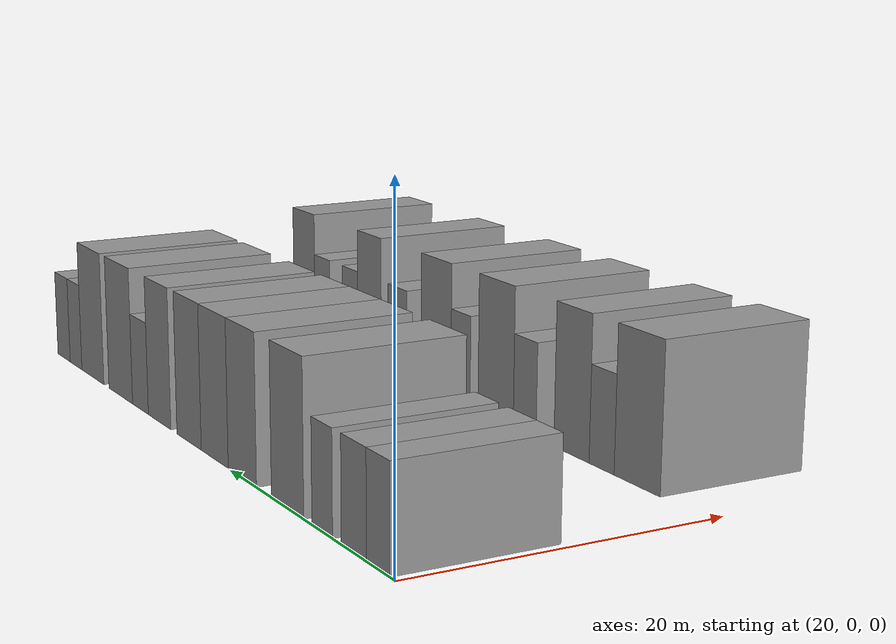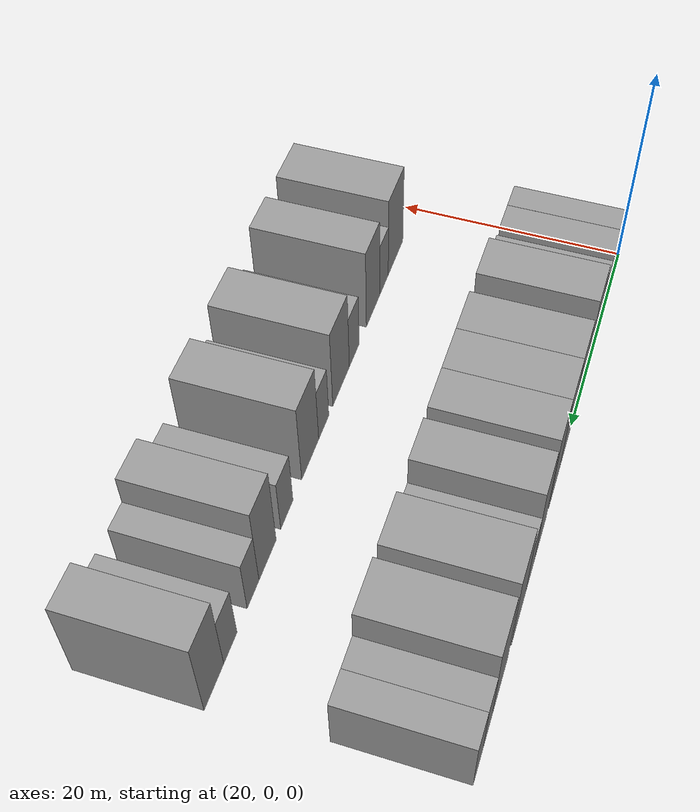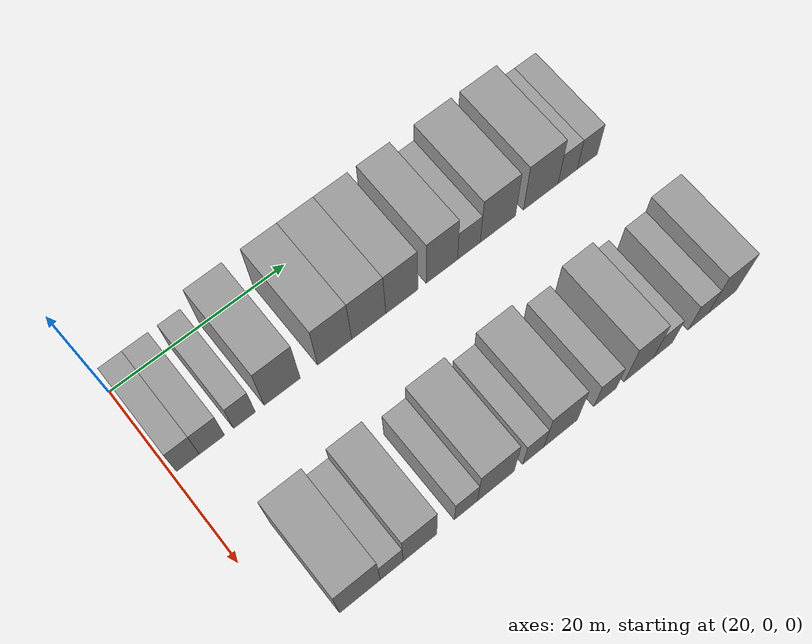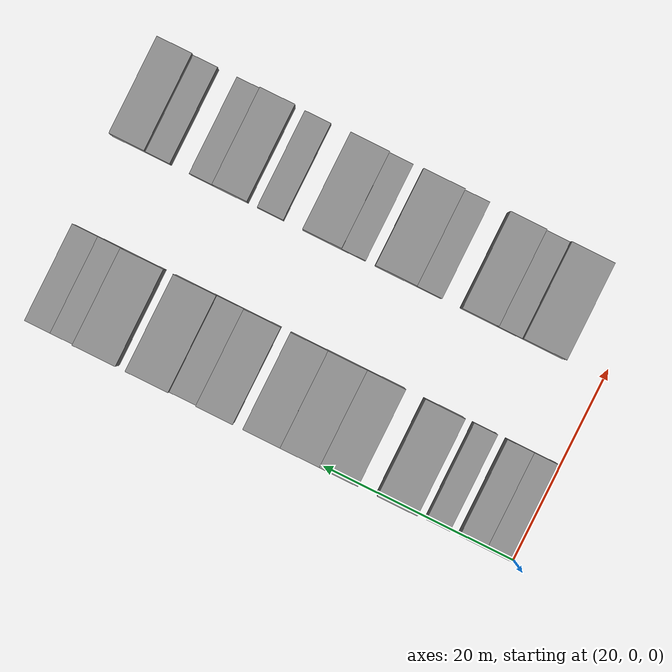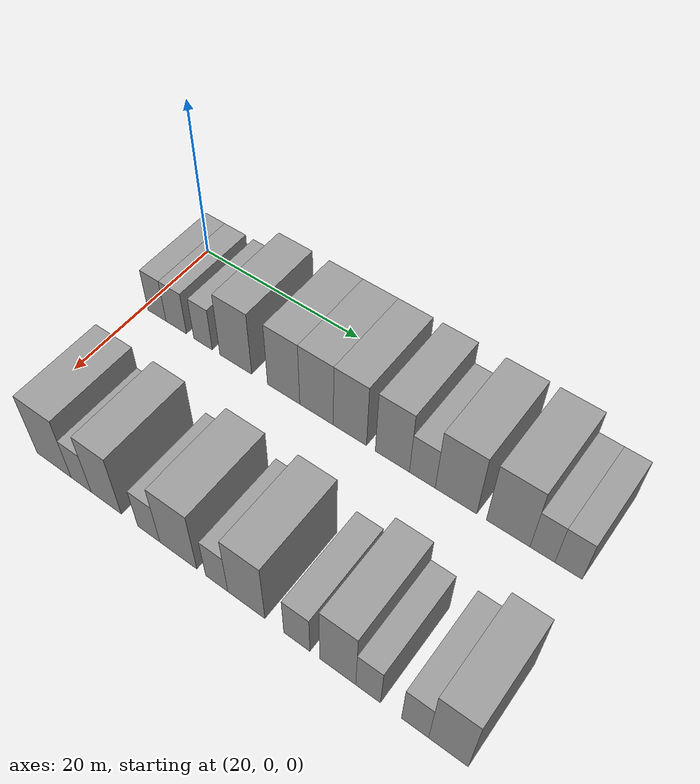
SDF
<sdf version="1.6">
 <world name="default">
  <model name="building_51">
   <static>1</static>
   <pose>25.0000 1.7864 0 0.000000 0.000000 0.000000</pose>
   <link name="link">
    <pose>0 0 3.00 0 0 0</pose>
    <collision name="collision"><geometry><box><size>10.0000 2.5070 6.0000</size></box></geometry></collision>
    <visual name="visual">
     <cast_shadows>0</cast_shadows>
     <geometry><box><size>10.0000 2.5070 6.0000</size></box></geometry>
     <material>
      <script>
       <uri>model://grey_wall/materials/scripts</uri>
       <uri>model://grey_wall/materials/textures</uri>
       <name>vrc/grey_wall</name>
      </script>
     </material>
    </visual>
   </link>
  </model>
  <model name="building_52">
   <static>1</static>
   <pose>25.0000 4.4324 0 0.000000 0.000000 0.000000</pose>
   <link name="link">
    <pose>0 0 3.00 0 0 0</pose>
    <collision name="collision"><geometry><box><size>10.0000 2.7849 6.0000</size></box></geometry></collision>
    <visual name="visual">
     <cast_shadows>0</cast_shadows>
     <geometry><box><size>10.0000 2.7849 6.0000</size></box></geometry>
     <material>
      <script>
       <uri>model://grey_wall/materials/scripts</uri>
       <uri>model://grey_wall/materials/textures</uri>
       <name>vrc/grey_wall</name>
      </script>
     </material>
    </visual>
   </link>
  </model>
  <model name="building_53">
   <static>1</static>
   <pose>25.0000 8.0485 0 0.000000 0.000000 0.000000</pose>
   <link name="link">
    <pose>0 0 3.00 0 0 0</pose>
    <collision name="collision"><geometry><box><size>10.0000 2.4474 6.0000</size></box></geometry></collision>
    <visual name="visual">
     <cast_shadows>0</cast_shadows>
     <geometry><box><size>10.0000 2.4474 6.0000</size></box></geometry>
     <material>
      <script>
       <uri>model://grey_wall/materials/scripts</uri>
       <uri>model://grey_wall/materials/textures</uri>
       <name>vrc/grey_wall</name>
      </script>
     </material>
    </visual>
   </link>
  </model>
  <model name="building_54">
   <static>1</static>
   <pose>25.0000 12.3292 0 0.000000 0.000000 0.000000</pose>
   <link name="link">
    <pose>0 0 4.50 0 0 0</pose>
    <collision name="collision"><geometry><box><size>10.0000 4.1140 9.0000</size></box></geometry></collision>
    <visual name="visual">
     <cast_shadows>0</cast_shadows>
     <geometry><box><size>10.0000 4.1140 9.0000</size></box></geometry>
     <material>
      <script>
       <uri>model://grey_wall/materials/scripts</uri>
       <uri>model://grey_wall/materials/textures</uri>
       <name>vrc/grey_wall</name>
      </script>
     </material>
    </visual>
   </link>
  </model>
  <model name="building_55">
   <static>1</static>
   <pose>25.0000 18.3756 0 0.000000 0.000000 0.000000</pose>
   <link name="link">
    <pose>0 0 4.50 0 0 0</pose>
    <collision name="collision"><geometry><box><size>10.0000 3.9787 9.0000</size></box></geometry></collision>
    <visual name="visual">
     <cast_shadows>0</cast_shadows>
     <geometry><box><size>10.0000 3.9787 9.0000</size></box></geometry>
     <material>
      <script>
       <uri>model://grey_wall/materials/scripts</uri>
       <uri>model://grey_wall/materials/textures</uri>
       <name>vrc/grey_wall</name>
      </script>
     </material>
    </visual>
   </link>
  </model>
  <model name="building_56">
   <static>1</static>
   <pose>25.0000 22.3830 0 0.000000 0.000000 0.000000</pose>
   <link name="link">
    <pose>0 0 4.50 0 0 0</pose>
    <collision name="collision"><geometry><box><size>10.0000 4.0362 9.0000</size></box></geometry></collision>
    <visual name="visual">
     <cast_shadows>0</cast_shadows>
     <geometry><box><size>10.0000 4.0362 9.0000</size></box></geometry>
     <material>
      <script>
       <uri>model://grey_wall/materials/scripts</uri>
       <uri>model://grey_wall/materials/textures</uri>
       <name>vrc/grey_wall</name>
      </script>
     </material>
    </visual>
   </link>
  </model>
  <model name="building_57">
   <static>1</static>
   <pose>25.0000 26.3301 0 0.000000 0.000000 0.000000</pose>
   <link name="link">
    <pose>0 0 4.50 0 0 0</pose>
    <collision name="collision"><geometry><box><size>10.0000 3.8579 9.0000</size></box></geometry></collision>
    <visual name="visual">
     <cast_shadows>0</cast_shadows>
     <geometry><box><size>10.0000 3.8579 9.0000</size></box></geometry>
     <material>
      <script>
       <uri>model://grey_wall/materials/scripts</uri>
       <uri>model://grey_wall/materials/textures</uri>
       <name>vrc/grey_wall</name>
      </script>
     </material>
    </visual>
   </link>
  </model>
  <model name="building_58">
   <static>1</static>
   <pose>25.0000 31.1724 0 0.000000 0.000000 0.000000</pose>
   <link name="link">
    <pose>0 0 4.50 0 0 0</pose>
    <collision name="collision"><geometry><box><size>10.0000 3.8268 9.0000</size></box></geometry></collision>
    <visual name="visual">
     <cast_shadows>0</cast_shadows>
     <geometry><box><size>10.0000 3.8268 9.0000</size></box></geometry>
     <material>
      <script>
       <uri>model://grey_wall/materials/scripts</uri>
       <uri>model://grey_wall/materials/textures</uri>
       <name>vrc/grey_wall</name>
      </script>
     </material>
    </visual>
   </link>
  </model>
  <model name="building_59">
   <static>1</static>
   <pose>25.0000 34.4945 0 0.000000 0.000000 0.000000</pose>
   <link name="link">
    <pose>0 0 3.00 0 0 0</pose>
    <collision name="collision"><geometry><box><size>10.0000 2.8173 6.0000</size></box></geometry></collision>
    <visual name="visual">
     <cast_shadows>0</cast_shadows>
     <geometry><box><size>10.0000 2.8173 6.0000</size></box></geometry>
     <material>
      <script>
       <uri>model://grey_wall/materials/scripts</uri>
       <uri>model://grey_wall/materials/textures</uri>
       <name>vrc/grey_wall</name>
      </script>
     </material>
    </visual>
   </link>
  </model>
  <model name="building_60">
   <static>1</static>
   <pose>25.0000 38.1174 0 0.000000 0.000000 0.000000</pose>
   <link name="link">
    <pose>0 0 4.50 0 0 0</pose>
    <collision name="collision"><geometry><box><size>10.0000 4.4286 9.0000</size></box></geometry></collision>
    <visual name="visual">
     <cast_shadows>0</cast_shadows>
     <geometry><box><size>10.0000 4.4286 9.0000</size></box></geometry>
     <material>
      <script>
       <uri>model://grey_wall/materials/scripts</uri>
       <uri>model://grey_wall/materials/textures</uri>
       <name>vrc/grey_wall</name>
      </script>
     </material>
    </visual>
   </link>
  </model>
  <model name="building_61">
   <static>1</static>
   <pose>25.0000 43.5494 0 0.000000 0.000000 0.000000</pose>
   <link name="link">
    <pose>0 0 4.50 0 0 0</pose>
    <collision name="collision"><geometry><box><size>10.0000 4.4355 9.0000</size></box></geometry></collision>
    <visual name="visual">
     <cast_shadows>0</cast_shadows>
     <geometry><box><size>10.0000 4.4355 9.0000</size></box></geometry>
     <material>
      <script>
       <uri>model://grey_wall/materials/scripts</uri>
       <uri>model://grey_wall/materials/textures</uri>
       <name>vrc/grey_wall</name>
      </script>
     </material>
    </visual>
   </link>
  </model>
  <model name="building_62">
   <static>1</static>
   <pose>25.0000 46.9996 0 0.000000 0.000000 0.000000</pose>
   <link name="link">
    <pose>0 0 3.00 0 0 0</pose>
    <collision name="collision"><geometry><box><size>10.0000 2.4647 6.0000</size></box></geometry></collision>
    <visual name="visual">
     <cast_shadows>0</cast_shadows>
     <geometry><box><size>10.0000 2.4647 6.0000</size></box></geometry>
     <material>
      <script>
       <uri>model://grey_wall/materials/scripts</uri>
       <uri>model://grey_wall/materials/textures</uri>
       <name>vrc/grey_wall</name>
      </script>
     </material>
    </visual>
   </link>
  </model>
  <model name="building_63">
   <static>1</static>
   <pose>25.0000 49.5599 0 0.000000 0.000000 0.000000</pose>
   <link name="link">
    <pose>0 0 3.00 0 0 0</pose>
    <collision name="collision"><geometry><box><size>10.0000 2.6560 6.0000</size></box></geometry></collision>
    <visual name="visual">
     <cast_shadows>0</cast_shadows>
     <geometry><box><size>10.0000 2.6560 6.0000</size></box></geometry>
     <material>
      <script>
       <uri>model://grey_wall/materials/scripts</uri>
       <uri>model://grey_wall/materials/textures</uri>
       <name>vrc/grey_wall</name>
      </script>
     </material>
    </visual>
   </link>
  </model>
  <model name="building_150">
   <static>1</static>
   <pose>44.0000 6.5063 0 0.000000 0.000000 0.000000</pose>
   <link name="link">
    <pose>0 0 4.50 0 0 0</pose>
    <collision name="collision"><geometry><box><size>10.0000 4.4514 9.0000</size></box></geometry></collision>
    <visual name="visual">
     <cast_shadows>0</cast_shadows>
     <geometry><box><size>10.0000 4.4514 9.0000</size></box></geometry>
     <material>
      <script>
       <uri>model://grey_wall/materials/scripts</uri>
       <uri>model://grey_wall/materials/textures</uri>
       <name>vrc/grey_wall</name>
      </script>
     </material>
    </visual>
   </link>
  </model>
  <model name="building_151">
   <static>1</static>
   <pose>44.0000 10.0080 0 0.000000 0.000000 0.000000</pose>
   <link name="link">
    <pose>0 0 3.00 0 0 0</pose>
    <collision name="collision"><geometry><box><size>10.0000 2.5519 6.0000</size></box></geometry></collision>
    <visual name="visual">
     <cast_shadows>0</cast_shadows>
     <geometry><box><size>10.0000 2.5519 6.0000</size></box></geometry>
     <material>
      <script>
       <uri>model://grey_wall/materials/scripts</uri>
       <uri>model://grey_wall/materials/textures</uri>
       <name>vrc/grey_wall</name>
      </script>
     </material>
    </visual>
   </link>
  </model>
  <model name="building_152">
   <static>1</static>
   <pose>44.0000 13.1653 0 0.000000 0.000000 0.000000</pose>
   <link name="link">
    <pose>0 0 4.50 0 0 0</pose>
    <collision name="collision"><geometry><box><size>10.0000 3.7626 9.0000</size></box></geometry></collision>
    <visual name="visual">
     <cast_shadows>0</cast_shadows>
     <geometry><box><size>10.0000 3.7626 9.0000</size></box></geometry>
     <material>
      <script>
       <uri>model://grey_wall/materials/scripts</uri>
       <uri>model://grey_wall/materials/textures</uri>
       <name>vrc/grey_wall</name>
      </script>
     </material>
    </visual>
   </link>
  </model>
  <model name="building_153">
   <static>1</static>
   <pose>44.0000 18.3649 0 0.000000 0.000000 0.000000</pose>
   <link name="link">
    <pose>0 0 3.00 0 0 0</pose>
    <collision name="collision"><geometry><box><size>10.0000 2.6368 6.0000</size></box></geometry></collision>
    <visual name="visual">
     <cast_shadows>0</cast_shadows>
     <geometry><box><size>10.0000 2.6368 6.0000</size></box></geometry>
     <material>
      <script>
       <uri>model://grey_wall/materials/scripts</uri>
       <uri>model://grey_wall/materials/textures</uri>
       <name>vrc/grey_wall</name>
      </script>
     </material>
    </visual>
   </link>
  </model>
  <model name="building_154">
   <static>1</static>
   <pose>44.0000 21.8281 0 0.000000 0.000000 0.000000</pose>
   <link name="link">
    <pose>0 0 4.50 0 0 0</pose>
    <collision name="collision"><geometry><box><size>10.0000 4.2895 9.0000</size></box></geometry></collision>
    <visual name="visual">
     <cast_shadows>0</cast_shadows>
     <geometry><box><size>10.0000 4.2895 9.0000</size></box></geometry>
     <material>
      <script>
       <uri>model://grey_wall/materials/scripts</uri>
       <uri>model://grey_wall/materials/textures</uri>
       <name>vrc/grey_wall</name>
      </script>
     </material>
    </visual>
   </link>
  </model>
  <model name="building_155">
   <static>1</static>
   <pose>44.0000 26.2145 0 0.000000 0.000000 0.000000</pose>
   <link name="link">
    <pose>0 0 3.00 0 0 0</pose>
    <collision name="collision"><geometry><box><size>10.0000 2.4833 6.0000</size></box></geometry></collision>
    <visual name="visual">
     <cast_shadows>0</cast_shadows>
     <geometry><box><size>10.0000 2.4833 6.0000</size></box></geometry>
     <material>
      <script>
       <uri>model://grey_wall/materials/scripts</uri>
       <uri>model://grey_wall/materials/textures</uri>
       <name>vrc/grey_wall</name>
      </script>
     </material>
    </visual>
   </link>
  </model>
  <model name="building_156">
   <static>1</static>
   <pose>44.0000 29.4748 0 0.000000 0.000000 0.000000</pose>
   <link name="link">
    <pose>0 0 4.50 0 0 0</pose>
    <collision name="collision"><geometry><box><size>10.0000 4.0372 9.0000</size></box></geometry></collision>
    <visual name="visual">
     <cast_shadows>0</cast_shadows>
     <geometry><box><size>10.0000 4.0372 9.0000</size></box></geometry>
     <material>
      <script>
       <uri>model://grey_wall/materials/scripts</uri>
       <uri>model://grey_wall/materials/textures</uri>
       <name>vrc/grey_wall</name>
      </script>
     </material>
    </visual>
   </link>
  </model>
  <model name="building_157">
   <static>1</static>
   <pose>44.0000 34.8521 0 0.000000 0.000000 0.000000</pose>
   <link name="link">
    <pose>0 0 3.00 0 0 0</pose>
    <collision name="collision"><geometry><box><size>10.0000 2.7174 6.0000</size></box></geometry></collision>
    <visual name="visual">
     <cast_shadows>0</cast_shadows>
     <geometry><box><size>10.0000 2.7174 6.0000</size></box></geometry>
     <material>
      <script>
       <uri>model://grey_wall/materials/scripts</uri>
       <uri>model://grey_wall/materials/textures</uri>
       <name>vrc/grey_wall</name>
      </script>
     </material>
    </visual>
   </link>
  </model>
  <model name="building_158">
   <static>1</static>
   <pose>44.0000 39.0144 0 0.000000 0.000000 0.000000</pose>
   <link name="link">
    <pose>0 0 4.50 0 0 0</pose>
    <collision name="collision"><geometry><box><size>10.0000 3.6072 9.0000</size></box></geometry></collision>
    <visual name="visual">
     <cast_shadows>0</cast_shadows>
     <geometry><box><size>10.0000 3.6072 9.0000</size></box></geometry>
     <material>
      <script>
       <uri>model://grey_wall/materials/scripts</uri>
       <uri>model://grey_wall/materials/textures</uri>
       <name>vrc/grey_wall</name>
      </script>
     </material>
    </visual>
   </link>
  </model>
  <model name="building_159">
   <static>1</static>
   <pose>44.0000 42.0311 0 0.000000 0.000000 0.000000</pose>
   <link name="link">
    <pose>0 0 3.00 0 0 0</pose>
    <collision name="collision"><geometry><box><size>10.0000 2.4263 6.0000</size></box></geometry></collision>
    <visual name="visual">
     <cast_shadows>0</cast_shadows>
     <geometry><box><size>10.0000 2.4263 6.0000</size></box></geometry>
     <material>
      <script>
       <uri>model://grey_wall/materials/scripts</uri>
       <uri>model://grey_wall/materials/textures</uri>
       <name>vrc/grey_wall</name>
      </script>
     </material>
    </visual>
   </link>
  </model>
  <model name="building_160">
   <static>1</static>
   <pose>44.0000 46.5129 0 0.000000 0.000000 0.000000</pose>
   <link name="link">
    <pose>0 0 3.00 0 0 0</pose>
    <collision name="collision"><geometry><box><size>10.0000 2.5373 6.0000</size></box></geometry></collision>
    <visual name="visual">
     <cast_shadows>0</cast_shadows>
     <geometry><box><size>10.0000 2.5373 6.0000</size></box></geometry>
     <material>
      <script>
       <uri>model://grey_wall/materials/scripts</uri>
       <uri>model://grey_wall/materials/textures</uri>
       <name>vrc/grey_wall</name>
      </script>
     </material>
    </visual>
   </link>
  </model>
  <model name="building_161">
   <static>1</static>
   <pose>44.0000 49.5948 0 0.000000 0.000000 0.000000</pose>
   <link name="link">
    <pose>0 0 4.50 0 0 0</pose>
    <collision name="collision"><geometry><box><size>10.0000 3.6264 9.0000</size></box></geometry></collision>
    <visual name="visual">
     <cast_shadows>0</cast_shadows>
     <geometry><box><size>10.0000 3.6264 9.0000</size></box></geometry>
     <material>
      <script>
       <uri>model://grey_wall/materials/scripts</uri>
       <uri>model://grey_wall/materials/textures</uri>
       <name>vrc/grey_wall</name>
      </script>
     </material>
    </visual>
   </link>
  </model>
 </world>
</sdf>
